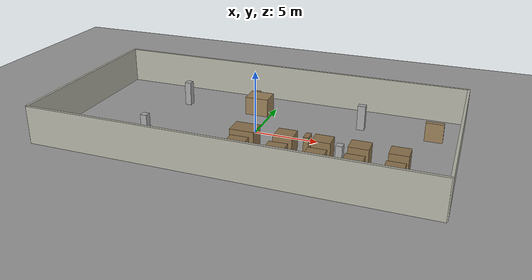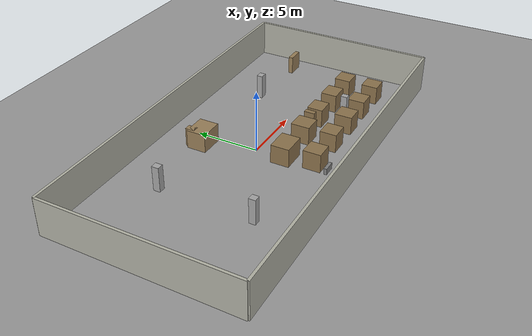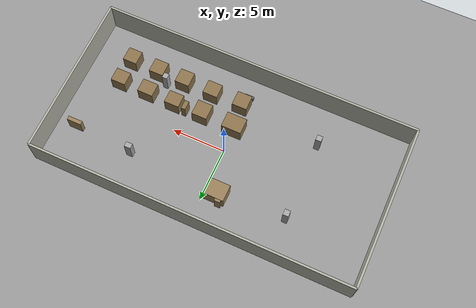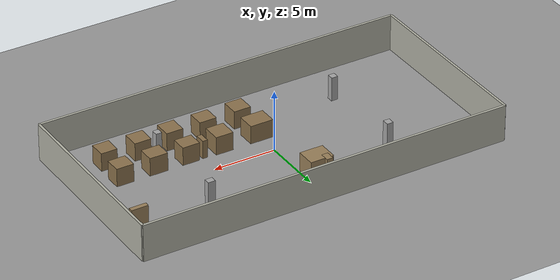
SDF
<?xml version="1.0"?>
<!-- Inline depot warehouse world matching the depot.pgm map layout.
     Original Depot model from Fuel is unavailable offline, so this
     recreates the geometry from the pre-built occupancy grid map. -->
<sdf version="1.6">
  <world name="depot">
    <scene>
      <grid>false</grid>
    </scene>
    <physics name="1ms" type="ignored">
      <max_step_size>0.002</max_step_size>
      <real_time_factor>1.0</real_time_factor>
    </physics>
    <plugin
      filename="libignition-gazebo-physics-system.so"
      name="ignition::gazebo::systems::Physics">
    </plugin>
    <plugin
      filename="libignition-gazebo-sensors-system.so"
      name="ignition::gazebo::systems::Sensors">
      <render_engine>ogre2</render_engine>
      <namespace>test</namespace>
    </plugin>
    <plugin
        filename="ignition-gazebo-imu-system"
        name="ignition::gazebo::systems::Imu">
    </plugin>
    <plugin
      filename="libignition-gazebo-user-commands-system.so"
      name="ignition::gazebo::systems::UserCommands">
    </plugin>
    <plugin
      filename="libignition-gazebo-scene-broadcaster-system.so"
      name="ignition::gazebo::systems::SceneBroadcaster">
    </plugin>

    <!-- Lighting -->
    <light type="directional" name="sun">
      <cast_shadows>true</cast_shadows>
      <pose>0 0 10 0 0 0</pose>
      <diffuse>0.8 0.8 0.8 1</diffuse>
      <specular>0.2 0.2 0.2 1</specular>
      <attenuation>
        <range>1000</range>
        <constant>0.9</constant>
        <linear>0.01</linear>
        <quadratic>0.001</quadratic>
      </attenuation>
      <direction>-0.5 0.1 -0.9</direction>
    </light>

    <!-- Ground plane -->
    <model name="ground_plane">
      <static>true</static>
      <link name="link">
        <collision name="collision">
          <geometry>
            <plane>
              <normal>0.0 0.0 1.0</normal>
            </plane>
          </geometry>
        </collision>
        <visual name="visual">
          <geometry>
            <plane>
              <normal>0.0 0.0 1.0</normal>
              <size>40 20</size>
            </plane>
          </geometry>
          <material>
            <ambient>0.6 0.6 0.6 1</ambient>
            <diffuse>0.6 0.6 0.6 1</diffuse>
            <specular>0.3 0.3 0.3 1</specular>
          </material>
        </visual>
      </link>
    </model>

    <!-- Outer walls: 30.16 x 15.20 m, centered at (0.02, -0.14) -->
    <model name="depot_walls">
      <pose>0.02 -0.14 1.5 0 0 0</pose>
      <static>true</static>

      <!-- North wall (y+) -->
      <link name="wall_north">
        <pose>0 7.60 0 0 0 0</pose>
        <collision name="collision">
          <geometry><box><size>30.20 0.20 3.0</size></box></geometry>
        </collision>
        <visual name="visual">
          <geometry><box><size>30.20 0.20 3.0</size></box></geometry>
          <material>
            <ambient>0.7 0.7 0.65 1</ambient>
            <diffuse>0.7 0.7 0.65 1</diffuse>
          </material>
        </visual>
      </link>

      <!-- South wall (y-) -->
      <link name="wall_south">
        <pose>0 -7.60 0 0 0 0</pose>
        <collision name="collision">
          <geometry><box><size>30.20 0.20 3.0</size></box></geometry>
        </collision>
        <visual name="visual">
          <geometry><box><size>30.20 0.20 3.0</size></box></geometry>
          <material>
            <ambient>0.7 0.7 0.65 1</ambient>
            <diffuse>0.7 0.7 0.65 1</diffuse>
          </material>
        </visual>
      </link>

      <!-- West wall (x-) -->
      <link name="wall_west">
        <pose>-15.08 0 0 0 0 0</pose>
        <collision name="collision">
          <geometry><box><size>0.20 15.20 3.0</size></box></geometry>
        </collision>
        <visual name="visual">
          <geometry><box><size>0.20 15.20 3.0</size></box></geometry>
          <material>
            <ambient>0.7 0.7 0.65 1</ambient>
            <diffuse>0.7 0.7 0.65 1</diffuse>
          </material>
        </visual>
      </link>

      <!-- East wall (x+) -->
      <link name="wall_east">
        <pose>15.08 0 0 0 0 0</pose>
        <collision name="collision">
          <geometry><box><size>0.20 15.20 3.0</size></box></geometry>
        </collision>
        <visual name="visual">
          <geometry><box><size>0.20 15.20 3.0</size></box></geometry>
          <material>
            <ambient>0.7 0.7 0.65 1</ambient>
            <diffuse>0.7 0.7 0.65 1</diffuse>
          </material>
        </visual>
      </link>
    </model>

    <!-- Shelving racks: south row (y ≈ -4.7) -->
    <model name="shelf_s1">
      <pose>0.32 -4.68 0.75 0 0 0</pose>
      <static>true</static>
      <link name="link">
        <collision name="collision">
          <geometry><box><size>1.40 1.40 1.5</size></box></geometry>
        </collision>
        <visual name="visual">
          <geometry><box><size>1.40 1.40 1.5</size></box></geometry>
          <material>
            <ambient>0.55 0.45 0.30 1</ambient>
            <diffuse>0.55 0.45 0.30 1</diffuse>
          </material>
        </visual>
      </link>
    </model>

    <model name="shelf_s2">
      <pose>3.24 -4.64 0.75 0 0 0</pose>
      <static>true</static>
      <link name="link">
        <collision name="collision">
          <geometry><box><size>1.40 1.32 1.5</size></box></geometry>
        </collision>
        <visual name="visual">
          <geometry><box><size>1.40 1.32 1.5</size></box></geometry>
          <material>
            <ambient>0.55 0.45 0.30 1</ambient>
            <diffuse>0.55 0.45 0.30 1</diffuse>
          </material>
        </visual>
      </link>
    </model>

    <model name="shelf_s3">
      <pose>6.06 -4.64 0.75 0 0 0</pose>
      <static>true</static>
      <link name="link">
        <collision name="collision">
          <geometry><box><size>1.36 1.40 1.5</size></box></geometry>
        </collision>
        <visual name="visual">
          <geometry><box><size>1.36 1.40 1.5</size></box></geometry>
          <material>
            <ambient>0.55 0.45 0.30 1</ambient>
            <diffuse>0.55 0.45 0.30 1</diffuse>
          </material>
        </visual>
      </link>
    </model>

    <model name="shelf_s4">
      <pose>8.70 -4.62 0.75 0 0 0</pose>
      <static>true</static>
      <link name="link">
        <collision name="collision">
          <geometry><box><size>1.36 1.36 1.5</size></box></geometry>
        </collision>
        <visual name="visual">
          <geometry><box><size>1.36 1.36 1.5</size></box></geometry>
          <material>
            <ambient>0.55 0.45 0.30 1</ambient>
            <diffuse>0.55 0.45 0.30 1</diffuse>
          </material>
        </visual>
      </link>
    </model>

    <model name="shelf_s5">
      <pose>11.44 -4.68 0.75 0 0 0</pose>
      <static>true</static>
      <link name="link">
        <collision name="collision">
          <geometry><box><size>1.32 1.32 1.5</size></box></geometry>
        </collision>
        <visual name="visual">
          <geometry><box><size>1.32 1.32 1.5</size></box></geometry>
          <material>
            <ambient>0.55 0.45 0.30 1</ambient>
            <diffuse>0.55 0.45 0.30 1</diffuse>
          </material>
        </visual>
      </link>
    </model>

    <!-- Shelving racks: north row (y ≈ -2.3) -->
    <model name="shelf_n1">
      <pose>0.08 -2.36 0.75 0 0 0</pose>
      <static>true</static>
      <link name="link">
        <collision name="collision">
          <geometry><box><size>1.88 1.48 1.5</size></box></geometry>
        </collision>
        <visual name="visual">
          <geometry><box><size>1.88 1.48 1.5</size></box></geometry>
          <material>
            <ambient>0.55 0.45 0.30 1</ambient>
            <diffuse>0.55 0.45 0.30 1</diffuse>
          </material>
        </visual>
      </link>
    </model>

    <model name="shelf_n2">
      <pose>3.22 -2.36 0.75 0 0 0</pose>
      <static>true</static>
      <link name="link">
        <collision name="collision">
          <geometry><box><size>1.44 1.48 1.5</size></box></geometry>
        </collision>
        <visual name="visual">
          <geometry><box><size>1.44 1.48 1.5</size></box></geometry>
          <material>
            <ambient>0.55 0.45 0.30 1</ambient>
            <diffuse>0.55 0.45 0.30 1</diffuse>
          </material>
        </visual>
      </link>
    </model>

    <model name="shelf_n3">
      <pose>6.00 -2.28 0.75 0 0 0</pose>
      <static>true</static>
      <link name="link">
        <collision name="collision">
          <geometry><box><size>1.40 1.24 1.5</size></box></geometry>
        </collision>
        <visual name="visual">
          <geometry><box><size>1.40 1.24 1.5</size></box></geometry>
          <material>
            <ambient>0.55 0.45 0.30 1</ambient>
            <diffuse>0.55 0.45 0.30 1</diffuse>
          </material>
        </visual>
      </link>
    </model>

    <model name="shelf_n4">
      <pose>8.68 -2.30 0.75 0 0 0</pose>
      <static>true</static>
      <link name="link">
        <collision name="collision">
          <geometry><box><size>1.48 1.28 1.5</size></box></geometry>
        </collision>
        <visual name="visual">
          <geometry><box><size>1.48 1.28 1.5</size></box></geometry>
          <material>
            <ambient>0.55 0.45 0.30 1</ambient>
            <diffuse>0.55 0.45 0.30 1</diffuse>
          </material>
        </visual>
      </link>
    </model>

    <model name="shelf_n5">
      <pose>11.44 -2.30 0.75 0 0 0</pose>
      <static>true</static>
      <link name="link">
        <collision name="collision">
          <geometry><box><size>1.40 1.28 1.5</size></box></geometry>
        </collision>
        <visual name="visual">
          <geometry><box><size>1.40 1.28 1.5</size></box></geometry>
          <material>
            <ambient>0.55 0.45 0.30 1</ambient>
            <diffuse>0.55 0.45 0.30 1</diffuse>
          </material>
        </visual>
      </link>
    </model>

    <!-- Connector between shelf rows -->
    <model name="shelf_connector">
      <pose>4.82 -2.12 0.75 0 0 0</pose>
      <static>true</static>
      <link name="link">
        <collision name="collision">
          <geometry><box><size>0.40 0.84 1.5</size></box></geometry>
        </collision>
        <visual name="visual">
          <geometry><box><size>0.40 0.84 1.5</size></box></geometry>
          <material>
            <ambient>0.55 0.45 0.30 1</ambient>
            <diffuse>0.55 0.45 0.30 1</diffuse>
          </material>
        </visual>
      </link>
    </model>

    <!-- Structure in upper-left area (y ≈ 4.0) -->
    <model name="structure_upper">
      <pose>-1.14 4.00 0.75 0 0 0</pose>
      <static>true</static>
      <link name="link">
        <collision name="collision">
          <geometry><box><size>1.92 1.56 1.5</size></box></geometry>
        </collision>
        <visual name="visual">
          <geometry><box><size>1.92 1.56 1.5</size></box></geometry>
          <material>
            <ambient>0.6 0.5 0.35 1</ambient>
            <diffuse>0.6 0.5 0.35 1</diffuse>
          </material>
        </visual>
      </link>
    </model>

    <model name="structure_upper2">
      <pose>-1.64 4.64 0.75 0 0 0</pose>
      <static>true</static>
      <link name="link">
        <collision name="collision">
          <geometry><box><size>0.52 0.76 1.5</size></box></geometry>
        </collision>
        <visual name="visual">
          <geometry><box><size>0.52 0.76 1.5</size></box></geometry>
          <material>
            <ambient>0.6 0.5 0.35 1</ambient>
            <diffuse>0.6 0.5 0.35 1</diffuse>
          </material>
        </visual>
      </link>
    </model>

    <!-- East-side structure -->
    <model name="structure_east">
      <pose>13.14 3.36 0.75 0 0 0</pose>
      <static>true</static>
      <link name="link">
        <collision name="collision">
          <geometry><box><size>1.36 0.36 1.5</size></box></geometry>
        </collision>
        <visual name="visual">
          <geometry><box><size>1.36 0.36 1.5</size></box></geometry>
          <material>
            <ambient>0.6 0.5 0.35 1</ambient>
            <diffuse>0.6 0.5 0.35 1</diffuse>
          </material>
        </visual>
      </link>
    </model>

    <!-- Bench between shelf rows -->
    <model name="bench_mid">
      <pose>0.08 -5.78 0.25 0 0 0</pose>
      <static>true</static>
      <link name="link">
        <collision name="collision">
          <geometry><box><size>0.92 0.24 0.5</size></box></geometry>
        </collision>
        <visual name="visual">
          <geometry><box><size>0.92 0.24 0.5</size></box></geometry>
          <material>
            <ambient>0.5 0.5 0.5 1</ambient>
            <diffuse>0.5 0.5 0.5 1</diffuse>
          </material>
        </visual>
      </link>
    </model>

    <!-- Support pillars -->
    <model name="pillar_nw">
      <pose>-7.48 3.62 1.0 0 0 0</pose>
      <static>true</static>
      <link name="link">
        <collision name="collision">
          <geometry><box><size>0.52 0.56 2.0</size></box></geometry>
        </collision>
        <visual name="visual">
          <geometry><box><size>0.52 0.56 2.0</size></box></geometry>
          <material>
            <ambient>0.65 0.65 0.65 1</ambient>
            <diffuse>0.65 0.65 0.65 1</diffuse>
          </material>
        </visual>
      </link>
    </model>

    <model name="pillar_ne">
      <pose>7.52 3.66 1.0 0 0 0</pose>
      <static>true</static>
      <link name="link">
        <collision name="collision">
          <geometry><box><size>0.60 0.48 2.0</size></box></geometry>
        </collision>
        <visual name="visual">
          <geometry><box><size>0.60 0.48 2.0</size></box></geometry>
          <material>
            <ambient>0.65 0.65 0.65 1</ambient>
            <diffuse>0.65 0.65 0.65 1</diffuse>
          </material>
        </visual>
      </link>
    </model>

    <model name="pillar_sw">
      <pose>-7.44 -3.88 1.0 0 0 0</pose>
      <static>true</static>
      <link name="link">
        <collision name="collision">
          <geometry><box><size>0.52 0.52 2.0</size></box></geometry>
        </collision>
        <visual name="visual">
          <geometry><box><size>0.52 0.52 2.0</size></box></geometry>
          <material>
            <ambient>0.65 0.65 0.65 1</ambient>
            <diffuse>0.65 0.65 0.65 1</diffuse>
          </material>
        </visual>
      </link>
    </model>

    <model name="pillar_se">
      <pose>7.58 -3.84 1.0 0 0 0</pose>
      <static>true</static>
      <link name="link">
        <collision name="collision">
          <geometry><box><size>0.48 0.52 2.0</size></box></geometry>
        </collision>
        <visual name="visual">
          <geometry><box><size>0.48 0.52 2.0</size></box></geometry>
          <material>
            <ambient>0.65 0.65 0.65 1</ambient>
            <diffuse>0.65 0.65 0.65 1</diffuse>
          </material>
        </visual>
      </link>
    </model>

  </world>
</sdf>
